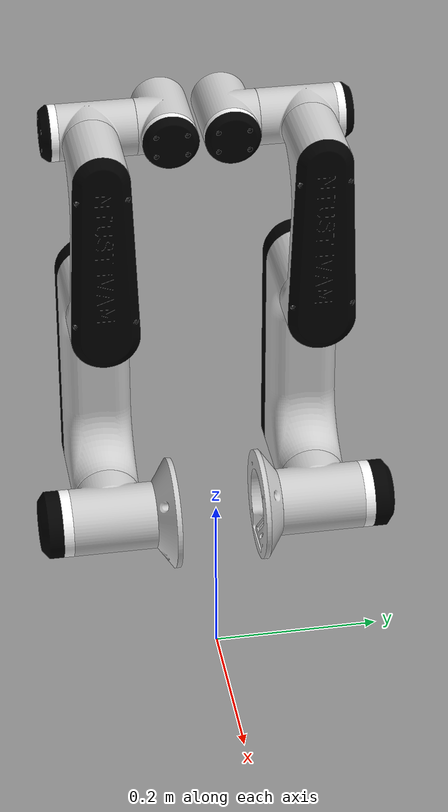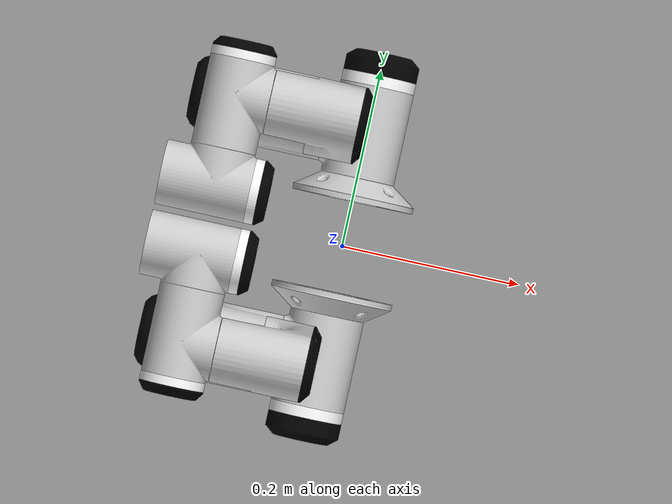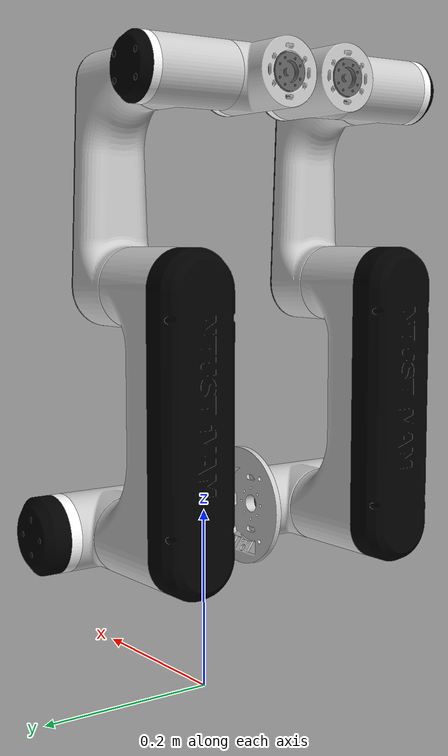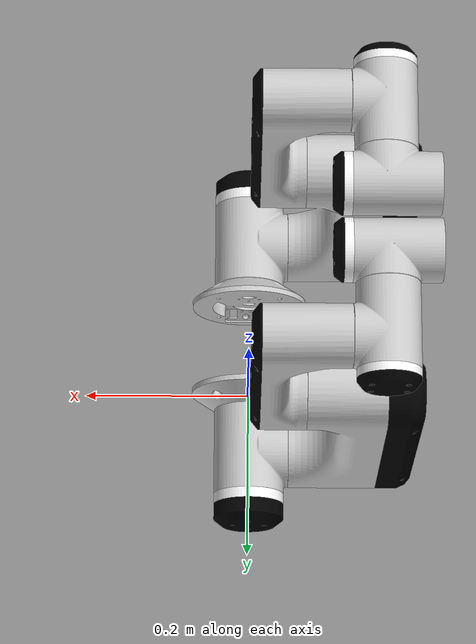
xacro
<?xml version="1.0"?>
<robot name="separable_jaws" xmlns:xacro="http://www.ros.org/wiki/xacro">
    <!-- declare arguments -->
    <xacro:arg name="using_left_arm" default="true"/>
    <xacro:arg name="using_right_arm" default="true"/>
    <xacro:arg name="using_gazebo" default="false"/>
    <xacro:arg name="using_fake_hardware" default="true"/>

    <!-- include macros from other files-->
    <xacro:include filename="$(find separable_jaws_description)/urdf/material.xacro"/>
    <xacro:include filename="$(find separable_jaws_description)/urdf/parts.xacro"/>
    <xacro:include filename="$(find separable_jaws_description)/urdf/subassemblies.xacro"/>

    <!-- robot definition -->
    <link name="base_link"/>

    <xacro:if value="$(arg using_left_arm)">
        <xacro:left_bracket xyz="0 0.05 0.2"/>
        <xacro:left_shoulder/>
        <xacro:left_upper_arm/>
        <xacro:left_lower_arm/>
        <xacro:left_wrist/>
        <xacro:left_palm/>
    </xacro:if>

    <xacro:if value="$(arg using_right_arm)">
        <xacro:right_bracket xyz="0 -0.05 0.2"/>
        <xacro:right_shoulder/>
        <xacro:right_upper_arm/>
        <xacro:right_lower_arm/>
        <xacro:right_wrist/>
        <xacro:right_palm/>
    </xacro:if>
</robot>

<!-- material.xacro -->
<!-- material macro for visual color of the robot-->
<robot name="separable_jaws" xmlns:xacro="http://www.ros.org/wiki/xacro">
    <!-- material for urdf visual -->
    <material name="Red">
        <color rgba="${204/255} ${0/255} ${0/255} 1.0"/>
    </material>
    <material name="Green">
        <color rgba="${0/255} ${204/255} ${0/255} 1.0"/>
    </material>
    <material name="Blue">
        <color rgba="${0/255} ${0/255} ${204/255} 1.0"/>
    </material>
    <material name="White">
        <color rgba="${255/255} ${255/255} ${255/255} 1.0"/>
    </material>
    <material name="Light_grey">
        <color rgba="${204/255} ${204/255} ${204/255} 1.0"/>
    </material>
    <material name="Grey">
        <color rgba="${100/255} ${100/255} ${100/255} 1.0"/>
    </material>
    <material name="Black">
        <color rgba="${0/255} ${0/255} ${0/255} 1.0"/>
    </material>
    <material name="Orange">
        <color rgba="${255/255} ${108/255} ${10/255} 1.0"/>
    </material>
</robot>

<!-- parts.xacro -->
<!-- urdf macro inertial, visual and collision for robot parts -->
<robot name="separable_jaws" xmlns:xacro="http://www.ros.org/wiki/xacro">
    <!-- constant definition -->
    <xacro:property name="triple_zero" value="0 0 0"/>
    <xacro:property name="link_material" value="Light_grey"/>
    <xacro:property name="cover_material" value="Black"/>
    <xacro:property name="extension_ring_material" value="White"/>
    <xacro:property name="motor_material" value="Grey"/>

    <!-- links -->
    <!-- bracket -->
    <xacro:macro name="bracket" params="name xyz:=${triple_zero} rpy:=${triple_zero}">
        <link name="${name}">
            <inertial>
                <origin xyz="${xyz}" rpy="${rpy}"/>
                <mass value="0.345"/>
                <inertia
                    ixx="0.000498516" ixy="0.000014631" ixz="-0.000000327"
                    iyy="0.000806479" iyz="-0.000000068"
                    izz="0.000424246"
                />
            </inertial>
            <visual>
                <origin xyz="${xyz}" rpy="${rpy}"/>
                <geometry>
                    <mesh filename="package://separable_jaws_description/meshes/bracket.stl"/>
                </geometry>
                <material name="${link_material}"/>
            </visual>
            <collision>
                <origin xyz="${xyz}" rpy="${rpy}"/>
                <geometry>
                    <mesh filename="package://separable_jaws_description/meshes/bracket.stl"/>
                </geometry>
            </collision>
        </link>
        <xacro:if value="$(arg using_gazebo)">
            <gazebo reference="${name}">
                <material>Gazebo/${link_material}</material>
            </gazebo>
        </xacro:if>
    </xacro:macro>

    <!-- shoulder -->
    <xacro:macro name="shoulder" params="name xyz:=${triple_zero} rpy:=${triple_zero}">
        <link name="${name}">
            <inertial>
                <origin xyz="${xyz}" rpy="${rpy}"/>
                <mass value="0.341"/>
                <inertia
                    ixx="0.001205694" ixy="0.000197055" ixz="-0.000000001"
                    iyy="0.00053986" iyz="-0.000000004"
                    izz="0.001280523"
                />
            </inertial>
            <visual>
                <origin xyz="${xyz}" rpy="${rpy}"/>
                <geometry>
                    <mesh filename="package://separable_jaws_description/meshes/shoulder.stl"/>
                </geometry>
                <material name="${link_material}"/>
            </visual>
            <collision>
                <origin xyz="${xyz}" rpy="${rpy}"/>
                <geometry>
                    <mesh filename="package://separable_jaws_description/meshes/shoulder.stl"/>
                </geometry>
            </collision>
        </link>
        <xacro:if value="$(arg using_gazebo)">
            <gazebo reference="${name}">
                <material>Gazebo/${link_material}</material>
            </gazebo>
        </xacro:if>
    </xacro:macro>

    <!-- upper_arm -->
    <xacro:macro name="upper_arm" params="name xyz:=${triple_zero} rpy:=${triple_zero}">
        <link name="${name}">
            <inertial>
                <origin xyz="${xyz}" rpy="${rpy}"/>
                <mass value="0.878"/>
                <inertia
                    ixx="0.021889537" ixy="0.005953130" ixz="-0.000000002"
                    iyy="0.003984845" iyz="-0.000000002"
                    izz="0.024402335"
                />
            </inertial>
            <visual>
                <origin xyz="${xyz}" rpy="${rpy}"/>
                <geometry>
                    <mesh filename="package://separable_jaws_description/meshes/upper_arm.stl"/>
                </geometry>
                <material name="${link_material}"/>
            </visual>
            <collision>
                <origin xyz="${xyz}" rpy="${rpy}"/>
                <geometry>
                    <mesh filename="package://separable_jaws_description/meshes/upper_arm.stl"/>
                </geometry>
            </collision>
        </link>
        <xacro:if value="$(arg using_gazebo)">
            <gazebo reference="${name}">
                <material>Gazebo/${link_material}</material>
            </gazebo>
        </xacro:if>
    </xacro:macro>

    <!-- lower_arm -->
    <xacro:macro name="lower_arm" params="name xyz:=${triple_zero} rpy:=${triple_zero}">
        <link name="${name}">
            <inertial>
                <origin xyz="${xyz}" rpy="${rpy}"/>
                <mass value="0.54"/>
                <inertia
                    ixx="0.010361365" ixy="-0.000515183" ixz="0.000000002"
                    iyy="0.000723729" iyz="0.000000018"
                    izz="0.010447864"
                />
            </inertial>
            <visual>
                <origin xyz="${xyz}" rpy="${rpy}"/>
                <geometry>
                    <mesh filename="package://separable_jaws_description/meshes/lower_arm.stl"/>
                </geometry>
                <material name="${link_material}"/>
            </visual>
            <collision>
                <origin xyz="${xyz}" rpy="${rpy}"/>
                <geometry>
                    <mesh filename="package://separable_jaws_description/meshes/lower_arm.stl"/>
                </geometry>
            </collision>
        </link>
        <xacro:if value="$(arg using_gazebo)">
            <gazebo reference="${name}">
                <material>Gazebo/${link_material}</material>
            </gazebo>
        </xacro:if>
    </xacro:macro>

    <!-- wrist -->
    <xacro:macro name="wrist" params="name xyz:=${triple_zero} rpy:=${triple_zero}">
        <link name="${name}">
            <inertial>
                <origin xyz="${xyz}" rpy="${rpy}"/>
                <mass value="0.219"/>
                <inertia
                    ixx="0.000292618" ixy="0.00009765" ixz="0.000000002"
                    iyy="0.000386529" iyz="0.000000001"
                    izz="0.000480342"
                />
            </inertial>
            <visual>
                <origin xyz="${xyz}" rpy="${rpy}"/>
                <geometry>
                    <mesh filename="package://separable_jaws_description/meshes/wrist.stl"/>
                </geometry>
                <material name="${link_material}"/>
            </visual>
            <collision>
                <origin xyz="${xyz}" rpy="${rpy}"/>
                <geometry>
                    <mesh filename="package://separable_jaws_description/meshes/wrist.stl"/>
                </geometry>
            </collision>
        </link>
        <xacro:if value="$(arg using_gazebo)">
            <gazebo reference="${name}">
                <material>Gazebo/${link_material}</material>
            </gazebo>
        </xacro:if>
    </xacro:macro>

    <!-- covers -->
    <!-- shoulder_extension_ring -->
    <xacro:macro name="shoulder_extension_ring" params="name xyz:=${triple_zero} rpy:=${triple_zero}">
        <link name="${name}">
            <inertial>
                <origin xyz="${xyz}" rpy="${rpy}"/>
                <mass value="0.01"/>
                <inertia
                    ixx="0.000008154" ixy="0" ixz="0"
                    iyy="0.000007974" iyz="0.000000006"
                    izz="0.000015238"
                />
            </inertial>
            <visual>
                <origin xyz="${xyz}" rpy="${rpy}"/>
                <geometry>
                    <mesh filename="package://separable_jaws_description/meshes/shoulder_extension_ring.stl"/>
                </geometry>
                <material name="${extension_ring_material}"/>
            </visual>
            <collision>
                <origin xyz="${xyz}" rpy="${rpy}"/>
                <geometry>
                    <mesh filename="package://separable_jaws_description/meshes/shoulder_extension_ring.stl"/>
                </geometry>
            </collision>
        </link>
        <xacro:if value="$(arg using_gazebo)">
            <gazebo reference="${name}">
                <material>Gazebo/${extension_ring_material}</material>
            </gazebo>
        </xacro:if>
    </xacro:macro>

    <!-- shoulder_cover -->
    <xacro:macro name="shoulder_cover" params="name xyz:=${triple_zero} rpy:=${triple_zero}">
        <link name="${name}">
            <inertial>
                <origin xyz="${xyz}" rpy="${rpy}"/>
                <mass value="0.075"/>
                <inertia
                    ixx="0.000055846" ixy="0" ixz="0"
                    iyy="0.000055846" iyz="0"
                    izz="0.000068514"
                />
            </inertial>
            <visual>
                <origin xyz="${xyz}" rpy="${rpy}"/>
                <geometry>
                    <mesh filename="package://separable_jaws_description/meshes/shoulder_cover.stl"/>
                </geometry>
                <material name="${cover_material}"/>
            </visual>
            <collision>
                <origin xyz="${xyz}" rpy="${rpy}"/>
                <geometry>
                    <mesh filename="package://separable_jaws_description/meshes/shoulder_cover.stl"/>
                </geometry>
            </collision>
        </link>
        <xacro:if value="$(arg using_gazebo)">
            <gazebo reference="${name}">
                <material>Gazebo/${cover_material}</material>
            </gazebo>
        </xacro:if>
    </xacro:macro>

    <!-- upper_arm_cover -->
    <xacro:macro name="upper_arm_cover" params="name xyz:=${triple_zero} rpy:=${triple_zero}">
        <link name="${name}">
            <inertial>
                <origin xyz="${xyz}" rpy="${rpy}"/>
                <mass value="0.235"/>
                <inertia
                    ixx="0.000385567" ixy="-0.00000002" ixz="0.000732197"
                    iyy="0.006196229" iyz="-0.000000009"
                    izz="0.00621496"
                />
            </inertial>
            <visual>
                <origin xyz="${xyz}" rpy="${rpy}"/>
                <geometry>
                    <mesh filename="package://separable_jaws_description/meshes/upper_arm_cover.stl"/>
                </geometry>
                <material name="${cover_material}"/>
            </visual>
            <collision>
                <origin xyz="${xyz}" rpy="${rpy}"/>
                <geometry>
                    <mesh filename="package://separable_jaws_description/meshes/upper_arm_cover.stl"/>
                </geometry>
            </collision>
        </link>
        <xacro:if value="$(arg using_gazebo)">
            <gazebo reference="${name}">
                <material>Gazebo/${cover_material}</material>
            </gazebo>
        </xacro:if>
    </xacro:macro>

    <!-- lower_arm_cover -->
    <xacro:macro name="lower_arm_cover" params="name xyz:=${triple_zero} rpy:=${triple_zero}">
        <link name="${name}">
            <inertial>
                <origin xyz="${xyz}" rpy="${rpy}"/>
                <mass value="0.079"/>
                <inertia
                    ixx="0.000047626" ixy="0.000000367" ixz="0.000039299"
                    iyy="0.001178645" iyz="-0.000000021"
                    izz="0.00121964"
                />
            </inertial>
            <visual>
                <origin xyz="${xyz}" rpy="${rpy}"/>
                <geometry>
                    <mesh filename="package://separable_jaws_description/meshes/lower_arm_cover.stl"/>
                </geometry>
                <material name="${cover_material}"/>
            </visual>
            <collision>
                <origin xyz="${xyz}" rpy="${rpy}"/>
                <geometry>
                    <mesh filename="package://separable_jaws_description/meshes/lower_arm_cover.stl"/>
                </geometry>
            </collision>
        </link>
        <xacro:if value="$(arg using_gazebo)">
            <gazebo reference="${name}">
                <material>Gazebo/${cover_material}</material>
            </gazebo>
        </xacro:if>
    </xacro:macro>

    <!-- wrist_extension_ring -->
    <xacro:macro name="wrist_extension_ring" params="name xyz:=${triple_zero} rpy:=${triple_zero}">
        <link name="${name}">
            <inertial>
                <origin xyz="${xyz}" rpy="${rpy}"/>
                <mass value="0.007"/>
                <inertia
                    ixx="0.000003276" ixy="0" ixz="0"
                    iyy="0.000003197" iyz="0.000000003"
                    izz="0.00000617"
                />
            </inertial>
            <visual>
                <origin xyz="${xyz}" rpy="${rpy}"/>
                <geometry>
                    <mesh filename="package://separable_jaws_description/meshes/wrist_extension_ring.stl"/>
                </geometry>
                <material name="${extension_ring_material}"/>
            </visual>
            <collision>
                <origin xyz="${xyz}" rpy="${rpy}"/>
                <geometry>
                    <mesh filename="package://separable_jaws_description/meshes/wrist_extension_ring.stl"/>
                </geometry>
            </collision>
        </link>
        <xacro:if value="$(arg using_gazebo)">
            <gazebo reference="${name}">
                <material>Gazebo/${extension_ring_material}</material>
            </gazebo>
        </xacro:if>
    </xacro:macro>

    <!-- wrist_cover -->
    <xacro:macro name="wrist_cover" params="name xyz:=${triple_zero} rpy:=${triple_zero}">
        <link name="${name}">
            <inertial>
                <origin xyz="${xyz}" rpy="${rpy}"/>
                <mass value="0.037"/>
                <inertia
                    ixx="0.000009686" ixy="0" ixz="0"
                    iyy="0.00000987" iyz="0"
                    izz="0.000017485"
                />
            </inertial>
            <visual>
                <origin xyz="${xyz}" rpy="${rpy}"/>
                <geometry>
                    <mesh filename="package://separable_jaws_description/meshes/wrist_cover.stl"/>
                </geometry>
                <material name="${cover_material}"/>
            </visual>
            <collision>
                <origin xyz="${xyz}" rpy="${rpy}"/>
                <geometry>
                    <mesh filename="package://separable_jaws_description/meshes/wrist_cover.stl"/>
                </geometry>
            </collision>
        </link>
        <xacro:if value="$(arg using_gazebo)">
            <gazebo reference="${name}">
                <material>Gazebo/${cover_material}</material>
            </gazebo>
        </xacro:if>
    </xacro:macro>

    <!-- motors -->
    <!-- dynamixel_pro_h54-100-s500 -->
    <xacro:macro name="dynamixel_pro_h54-100-s500" params="name xyz:=${triple_zero} rpy:=${triple_zero}">
        <link name="${name}">
            <inertial>
                <origin xyz="${xyz}" rpy="${rpy}"/>
                <mass value="0.732"/>
                <inertia
                    ixx="0.002986389" ixy="0" ixz="0"
                    iyy="0.000323459" iyz="0.000020263"
                    izz="0.002987724"
                />
            </inertial>
            <visual>
                <origin xyz="${xyz}" rpy="${rpy}"/>
                <geometry>
                    <mesh filename="package://separable_jaws_description/meshes/dynamixel_pro_h54-100-s500.stl"/>
                </geometry>
                <material name="${motor_material}"/>
            </visual>
            <collision>
                <origin xyz="${xyz}" rpy="${rpy}"/>
                <geometry>
                    <mesh filename="package://separable_jaws_description/meshes/dynamixel_pro_h54-100-s500.stl"/>
                </geometry>
            </collision>
        </link>
        <xacro:if value="$(arg using_gazebo)">
            <gazebo reference="${name}">
                <material>Gazebo/${motor_material}</material>
            </gazebo>
        </xacro:if>
    </xacro:macro>

    <!-- dynamixel_pro_h54-200-s500 -->
    <xacro:macro name="dynamixel_pro_h54-200-s500" params="name xyz:=${triple_zero} rpy:=${triple_zero}">
        <link name="${name}">
            <inertial>
                <origin xyz="${xyz}" rpy="${rpy}"/>
                <mass value="0.219"/>
                <inertia
                    ixx="0.004683715" ixy="0" ixz="0"
                    iyy="0.000378897" iyz="0.000023577"
                    izz="0.004684874"
                />
            </inertial>
            <visual>
                <origin xyz="${xyz}" rpy="${rpy}"/>
                <geometry>
                    <mesh filename="package://separable_jaws_description/meshes/dynamixel_pro_h54-200-s500.stl"/>
                </geometry>
                <material name="${motor_material}"/>
            </visual>
            <collision>
                <origin xyz="${xyz}" rpy="${rpy}"/>
                <geometry>
                    <mesh filename="package://separable_jaws_description/meshes/dynamixel_pro_h54-200-s500.stl"/>
                </geometry>
            </collision>
        </link>
        <xacro:if value="$(arg using_gazebo)">
            <gazebo reference="${name}">
                <material>Gazebo/${motor_material}</material>
            </gazebo>
        </xacro:if>
    </xacro:macro>

    <!-- dynamixel_pro_h42-20-s300-->
    <xacro:macro name="dynamixel_pro_h42-20-s300" params="name xyz:=${triple_zero} rpy:=${triple_zero}">
        <link name="${name}">
            <inertial>
                <origin xyz="${xyz}" rpy="${rpy}"/>
                <mass value="0.219"/>
                <inertia
                    ixx="0.000890475" ixy="0" ixz="0"
                    iyy="0.000092678" iyz="0.000003424"
                    izz=".000890318"
                />
            </inertial>
            <visual>
                <origin xyz="${xyz}" rpy="${rpy}"/>
                <geometry>
                    <mesh filename="package://separable_jaws_description/meshes/dynamixel_pro_h42-20-s300.stl"/>
                </geometry>
                <material name="${motor_material}"/>
            </visual>
            <collision>
                <origin xyz="${xyz}" rpy="${rpy}"/>
                <geometry>
                    <mesh filename="package://separable_jaws_description/meshes/dynamixel_pro_h42-20-s300.stl"/>
                </geometry>
            </collision>
        </link>
        <xacro:if value="$(arg using_gazebo)">
            <gazebo reference="${name}">
                <material>Gazebo/${motor_material}</material>
            </gazebo>
        </xacro:if>
    </xacro:macro>
</robot>

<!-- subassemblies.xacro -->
<!-- urdf macro attached subassemblies constructed from parts -->
<robot name="separable_jaws" xmlns:xacro="http://www.ros.org/wiki/xacro">
    <!-- constant definition -->
    <xacro:property name="triple_zero" value="0 0 0"/>

    <!-- include macros from other files -->
    <xacro:include filename="$(find separable_jaws_description)/urdf/parts.xacro"/>

    <!-- subassemblies -->
    <!-- left_bracket -->
    <xacro:macro name="left_bracket" params="xyz:=${triple_zero}">
        <xacro:bracket name="left_bracket"/>
        <joint name="left_mount_point" type="fixed">
            <origin xyz="${xyz}" rpy="${radians(180)} ${radians(-90)} 0"/>
            <parent link="base_link"/>
            <child link="left_bracket"/>
        </joint>
    </xacro:macro>

    <!-- left_shoulder -->
    <xacro:macro name="left_shoulder">
        <xacro:dynamixel_pro_h54-100-s500 name="left_shoulder_motor" rpy="0 ${radians(-90)} 0"/>
        <xacro:shoulder name="left_shoulder"/>
        <xacro:shoulder_extension_ring name="left_shoulder_extension_ring"/>
        <xacro:shoulder_cover name="left_shoulder_cover"/>
        <joint name="left_shoulder_joint" type="continuous">
            <origin xyz="0 -0.025 0" rpy="0 ${radians(180)} 0"/>
            <parent link="left_bracket"/>
            <child link="left_shoulder_motor"/>
            <axis xyz="0 -1 0"/>
            <limit lower="${radians(180)}" upper="${radians(180)}" effort="100" velocity="1"/>
        </joint>
        <joint name="left_shoulder_internal_mount1" type="fixed">
            <origin xyz="0 -0.00005 0" rpy="0 ${radians(-90)} 0"/>
            <parent link="left_shoulder_motor"/>
            <child link="left_shoulder"/>
        </joint>
        <joint name="left_shoulder_internal_mount2" type="fixed">
            <origin xyz="0 -0.1 0" rpy="${radians(90)} ${radians(-90)} 0"/>
            <parent link="left_shoulder"/>
            <child link="left_shoulder_extension_ring"/>
        </joint>
        <joint name="left_shoulder_internal_mount3" type="fixed">
            <origin xyz="0 0 0.012" rpy="0 0 0"/>
            <parent link="left_shoulder_extension_ring"/>
            <child link="left_shoulder_cover"/>
        </joint>
    </xacro:macro>

    <!-- left_upper_arm -->
    <xacro:macro name="left_upper_arm">
        <xacro:dynamixel_pro_h54-200-s500 name="left_upper_arm_motor1" rpy="${radians(180)} ${radians(180)} ${radians(-90)}"/>
        <xacro:upper_arm name="left_upper_arm"/>
        <xacro:upper_arm_cover name="left_upper_arm_cover"/>
        <xacro:dynamixel_pro_h54-100-s500 name="left_upper_arm_motor2" rpy="0 ${radians(90)} ${radians(90)}"/>
        <joint name="left_upper_arm_joint" type="continuous">
            <origin xyz="0.045 -0.0505 0" rpy="${radians(-90)} 0 0"/>
            <parent link="left_shoulder"/>
            <child link="left_upper_arm_motor1"/>
            <axis xyz="1 0 0"/>
            <limit lower="${radians(180)}" upper="${radians(180)}" effort="100" velocity="1"/>
        </joint>
        <joint name="left_upper_arm_internal_mount1" type="fixed">
            <origin xyz="0.00005 0 0" rpy="0 0 0"/>
            <parent link="left_upper_arm_motor1"/>
            <child link="left_upper_arm"/>
        </joint>
        <joint name="left_upper_arm_internal_mount2" type="fixed">
            <origin xyz="0.01495 -0.25 0" rpy="0 0 0"/>
            <parent link="left_upper_arm"/>
            <child link="left_upper_arm_motor2"/>
        </joint>
        <joint name="left_upper_arm_internal_mount3" type="fixed">
            <origin xyz="0.1 0 0" rpy="${radians(90)} 0 ${radians(-90)}"/>
            <parent link="left_upper_arm"/>
            <child link="left_upper_arm_cover"/>
        </joint>
    </xacro:macro>

    <!-- left_lower_arm -->
    <xacro:macro name="left_lower_arm">
        <xacro:lower_arm name="left_lower_arm"/>
        <xacro:lower_arm_cover name="left_lower_arm_cover"/>
        <xacro:dynamixel_pro_h42-20-s300 name="left_lower_arm_motor" rpy="0 0 ${radians(-90)}"/>
        <joint name="left_lower_arm_joint" type="continuous">
            <origin xyz="0 0 0" rpy="0 0 0"/>
            <parent link="left_upper_arm_motor2"/>
            <child link="left_lower_arm"/>
            <axis xyz="-1 0 0"/>
            <limit lower="${radians(180)}" upper="${radians(180)}" effort="100" velocity="1"/>
        </joint>
        <joint name="left_lower_arm_internal_mount" type="fixed">
            <origin xyz="0.0405 -0.2 0" rpy="0 0 0"/>
            <parent link="left_lower_arm"/>
            <child link="left_lower_arm_motor"/>
        </joint>
        <joint name="left_lower_arm_internal_mount2" type="fixed">
            <origin xyz="-0.05 0 0" rpy="${radians(-90)} 0 ${radians(90)}"/>
            <parent link="left_lower_arm"/>
            <child link="left_lower_arm_cover"/>
        </joint>
    </xacro:macro>

    <!-- left_wrist -->
    <xacro:macro name="left_wrist">
        <xacro:wrist name="left_wrist"/>
        <xacro:wrist_extension_ring name="left_wrist_extension_ring"/>
        <xacro:wrist_cover name="left_wrist_cover"/>
        <xacro:dynamixel_pro_h42-20-s300 name="left_wrist_motor" rpy="0 ${radians(-90)} ${radians(180)}"/>
        <joint name="left_wrist_joint" type="continuous">
            <origin xyz="0 0 0" rpy="${radians(-90)} 0 0"/>
            <parent link="left_lower_arm_motor"/>
            <child link="left_wrist"/>
            <axis xyz="1 0 0"/>
            <limit lower="${radians(180)}" upper="${radians(180)}" effort="100" velocity="1"/>
        </joint>
        <joint name="left_wrist_internal_mount1" type="fixed">
            <origin xyz="0.035 -0.055 0" rpy="0 0 0"/>
            <parent link="left_wrist"/>
            <child link="left_wrist_motor"/>
        </joint>
        <joint name="left_wrist_internal_mount2" type="fixed">
            <origin xyz="0.035 0.035 0" rpy="${radians(-90)} ${radians(-90)} 0"/>
            <parent link="left_wrist"/>
            <child link="left_wrist_extension_ring"/>
        </joint>
        <joint name="left_wrist_internal_mount3" type="fixed">
            <origin xyz="0 0 0.009" rpy="0 0 0"/>
            <parent link="left_wrist_extension_ring"/>
            <child link="left_wrist_cover"/>
        </joint>
    </xacro:macro>

    <!-- left_palm -->
    <xacro:macro name="left_palm">
        <xacro:wrist name="left_palm"/>
        <xacro:wrist_extension_ring name="left_palm_extension_ring"/>
        <xacro:wrist_cover name="left_palm_cover"/>
        <xacro:dynamixel_pro_h42-20-s300 name="left_palm_motor" rpy="0 ${radians(-90)} ${radians(180)}"/>
        <joint name="left_palm_joint" type="continuous">
            <origin xyz="0 0 0" rpy="0 ${radians(180)} ${radians(90)}"/>
            <parent link="left_wrist_motor"/>
            <child link="left_palm"/>
            <axis xyz="1 0 0"/>
            <limit lower="${radians(180)}" upper="${radians(180)}" effort="100" velocity="1"/>
        </joint>
        <joint name="left_palm_internal_mount1" type="fixed">
            <origin xyz="0.035 -0.055 0" rpy="0 0 0"/>
            <parent link="left_palm"/>
            <child link="left_palm_motor"/>
        </joint>
        <joint name="left_palm_internal_mount2" type="fixed">
            <origin xyz="0.035 0.035 0" rpy="${radians(-90)} ${radians(-90)} 0"/>
            <parent link="left_palm"/>
            <child link="left_palm_extension_ring"/>
        </joint>
        <joint name="left_palm_internal_mount3" type="fixed">
            <origin xyz="0 0 0.009" rpy="0 0 0"/>
            <parent link="left_palm_extension_ring"/>
            <child link="left_palm_cover"/>
        </joint>
    </xacro:macro>

    <!-- right_bracket -->
    <xacro:macro name="right_bracket" params="xyz:=${triple_zero}">
        <xacro:bracket name="right_bracket"/>
        <joint name="right_mount_point" type="fixed">
            <origin xyz="${xyz}" rpy="0 ${radians(-90)} 0"/>
            <parent link="base_link"/>
            <child link="right_bracket"/>
        </joint>
    </xacro:macro>

    <!-- right_shoulder -->
    <xacro:macro name="right_shoulder">
        <xacro:dynamixel_pro_h54-100-s500 name="right_shoulder_motor" rpy="0 ${radians(90)} 0"/>
        <xacro:shoulder name="right_shoulder"/>
        <xacro:shoulder_extension_ring name="right_shoulder_extension_ring"/>
        <xacro:shoulder_cover name="right_shoulder_cover"/>
        <joint name="right_shoulder_joint" type="continuous">
            <origin xyz="0 -0.025 0" rpy="0 0 0"/>
            <parent link="right_bracket"/>
            <child link="right_shoulder_motor"/>
            <axis xyz="0 -1 0"/>
            <limit lower="${radians(180)}" upper="${radians(180)}" effort="100" velocity="1"/>
        </joint>
        <joint name="right_shoulder_internal_mount1" type="fixed">
            <origin xyz="0 -0.00005 0" rpy="0 ${radians(-90)} 0"/>
            <parent link="right_shoulder_motor"/>
            <child link="right_shoulder"/>
        </joint>
        <joint name="right_shoulder_internal_mount2" type="fixed">
            <origin xyz="0 -0.1 0" rpy="${radians(90)} ${radians(-90)} 0"/>
            <parent link="right_shoulder"/>
            <child link="right_shoulder_extension_ring"/>
        </joint>
        <joint name="right_shoulder_internal_mount3" type="fixed">
            <origin xyz="0 0 0.012" rpy="0 0 0"/>
            <parent link="right_shoulder_extension_ring"/>
            <child link="right_shoulder_cover"/>
        </joint>
    </xacro:macro>

    <!-- right_upper_arm -->
    <xacro:macro name="right_upper_arm">
        <xacro:dynamixel_pro_h54-200-s500 name="right_upper_arm_motor1" rpy="${radians(180)} 0 ${radians(-90)}"/>
        <xacro:upper_arm name="right_upper_arm"/>
        <xacro:upper_arm_cover name="right_upper_arm_cover"/>
        <xacro:dynamixel_pro_h54-100-s500 name="right_upper_arm_motor2" rpy="0 ${radians(90)} ${radians(90)}"/>
        <joint name="right_upper_arm_joint" type="continuous">
            <origin xyz="0.045 -0.0505 0" rpy="${radians(90)} 0 0"/>
            <parent link="right_shoulder"/>
            <child link="right_upper_arm_motor1"/>
            <axis xyz="1 0 0"/>
            <limit lower="${radians(180)}" upper="${radians(180)}" effort="100" velocity="1"/>
        </joint>
        <joint name="right_upper_arm_internal_mount1" type="fixed">
            <origin xyz="0.00005 0 0" rpy="0 0 0"/>
            <parent link="right_upper_arm_motor1"/>
            <child link="right_upper_arm"/>
        </joint>
        <joint name="right_upper_arm_internal_mount2" type="fixed">
            <origin xyz="0.01495 -0.25 0" rpy="0 0 0"/>
            <parent link="right_upper_arm"/>
            <child link="right_upper_arm_motor2"/>
        </joint>
        <joint name="right_upper_arm_internal_mount3" type="fixed">
            <origin xyz="0.1 0 0" rpy="${radians(90)} 0 ${radians(-90)}"/>
            <parent link="right_upper_arm"/>
            <child link="right_upper_arm_cover"/>
        </joint>
    </xacro:macro>

    <!-- right_lower_arm -->
    <xacro:macro name="right_lower_arm">
        <xacro:lower_arm name="right_lower_arm"/>
        <xacro:lower_arm_cover name="right_lower_arm_cover"/>
        <xacro:dynamixel_pro_h42-20-s300 name="right_lower_arm_motor" rpy="0 ${radians(180)} ${radians(-90)}"/>
        <joint name="right_lower_arm_joint" type="continuous">
            <origin xyz="0 0 0" rpy="0 0 0"/>
            <parent link="right_upper_arm_motor2"/>
            <child link="right_lower_arm"/>
            <axis xyz="-1 0 0"/>
            <limit lower="${radians(180)}" upper="${radians(180)}" effort="100" velocity="1"/>
        </joint>
        <joint name="right_lower_arm_internal_mount1" type="fixed">
            <origin xyz="0.0405 -0.2 0" rpy="0 0 0"/>
            <parent link="right_lower_arm"/>
            <child link="right_lower_arm_motor"/>
        </joint>
        <joint name="right_lower_arm_internal_mount2" type="fixed">
            <origin xyz="-0.05 0 0" rpy="${radians(-90)} 0 ${radians(90)}"/>
            <parent link="right_lower_arm"/>
            <child link="right_lower_arm_cover"/>
        </joint>
    </xacro:macro>

    <!-- right_wrist -->
    <xacro:macro name="right_wrist">
        <xacro:wrist name="right_wrist"/>
        <xacro:wrist_extension_ring name="right_wrist_extension_ring"/>
        <xacro:wrist_cover name="right_wrist_cover"/>
        <xacro:dynamixel_pro_h42-20-s300 name="right_wrist_motor" rpy="0 ${radians(-90)} ${radians(180)}"/>
        <joint name="right_wrist_joint" type="continuous">
            <origin xyz="0 0 0" rpy="${radians(90)} 0 0"/>
            <parent link="right_lower_arm_motor"/>
            <child link="right_wrist"/>
            <axis xyz="1 0 0"/>
            <limit lower="${radians(180)}" upper="${radians(180)}" effort="100" velocity="1"/>
        </joint>
        <joint name="right_wrist_internal_mount1" type="fixed">
            <origin xyz="0.035 -0.055 0" rpy="0 0 0"/>
            <parent link="right_wrist"/>
            <child link="right_wrist_motor"/>
        </joint>
        <joint name="right_wrist_internal_mount2" type="fixed">
            <origin xyz="0.035 0.035 0" rpy="${radians(-90)} ${radians(-90)} 0"/>
            <parent link="right_wrist"/>
            <child link="right_wrist_extension_ring"/>
        </joint>
        <joint name="right_wrist_internal_mount3" type="fixed">
            <origin xyz="0 0 0.009" rpy="0 0 0"/>
            <parent link="right_wrist_extension_ring"/>
            <child link="right_wrist_cover"/>
        </joint>

    </xacro:macro>

    <!-- right_palm -->
    <xacro:macro name="right_palm">
        <xacro:wrist name="right_palm"/>
        <xacro:wrist_extension_ring name="right_palm_extension_ring"/>
        <xacro:wrist_cover name="right_palm_cover"/>
        <xacro:dynamixel_pro_h42-20-s300 name="right_palm_motor" rpy="0 ${radians(-90)} ${radians(180)}"/>
        <joint name="right_palm_joint" type="continuous">
            <origin xyz="0 0 0" rpy="0 ${radians(180)} ${radians(90)}"/>
            <parent link="right_wrist_motor"/>
            <child link="right_palm"/>
            <axis xyz="1 0 0"/>
            <limit lower="${radians(180)}" upper="${radians(180)}" effort="100" velocity="1"/>
        </joint>
        <joint name="right_palm_internal_mount1" type="fixed">
            <origin xyz="0.035 -0.055 0" rpy="0 0 0"/>
            <parent link="right_palm"/>
            <child link="right_palm_motor"/>
        </joint>
        <joint name="right_palm_internal_mount2" type="fixed">
            <origin xyz="0.035 0.035 0" rpy="${radians(-90)} ${radians(-90)} 0"/>
            <parent link="right_palm"/>
            <child link="right_palm_extension_ring"/>
        </joint>
        <joint name="right_palm_internal_mount3" type="fixed">
            <origin xyz="0 0 0.009" rpy="0 0 0"/>
            <parent link="right_palm_extension_ring"/>
            <child link="right_palm_cover"/>
        </joint>
    </xacro:macro>
</robot>
